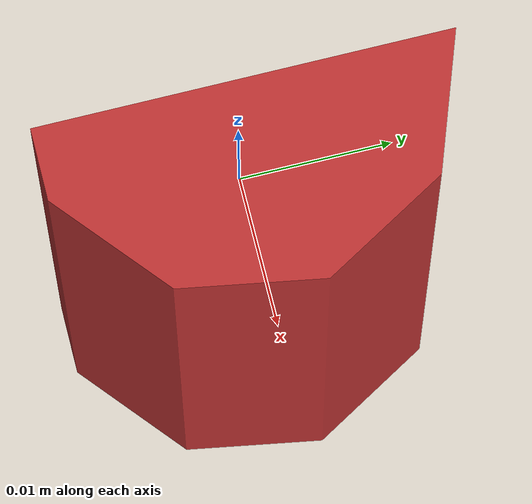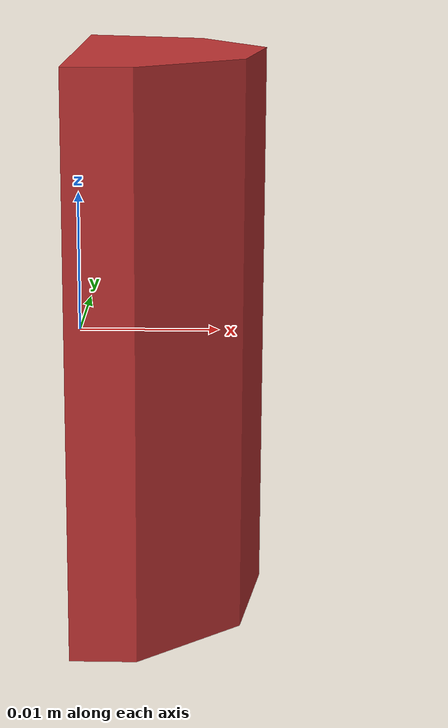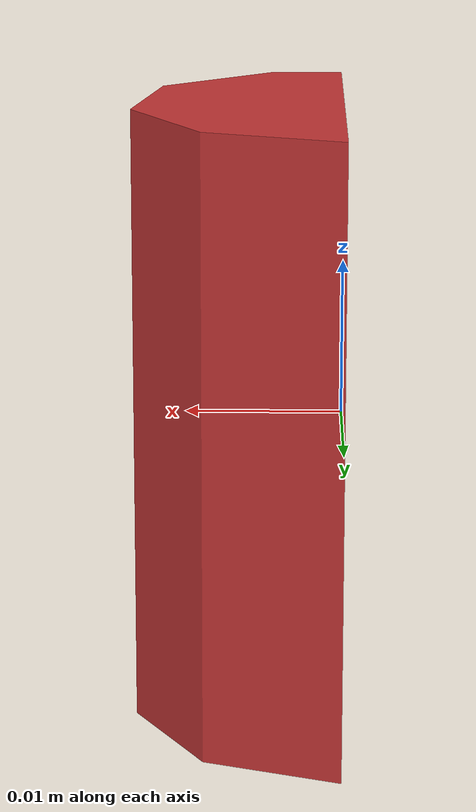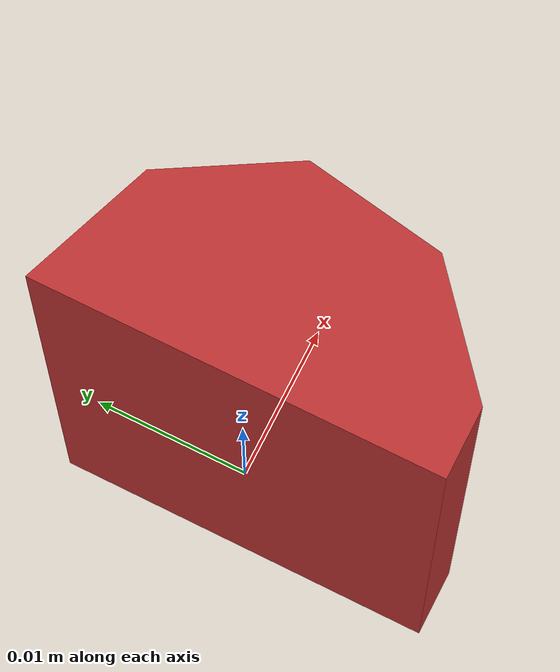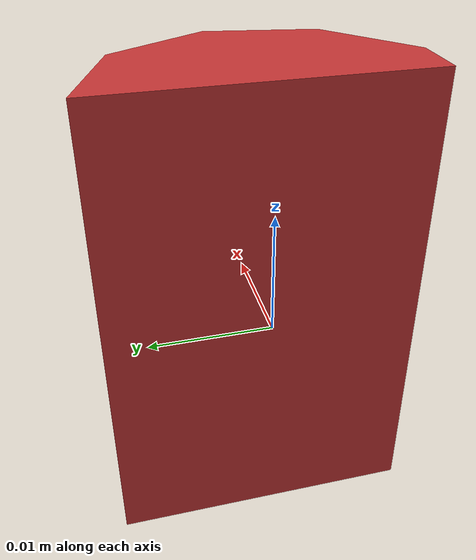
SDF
<?xml version="1.0" ?>
<sdf version='1.6'>
  <model name='cyl_6'>
    <link name='cyl_6'>
      <pose frame=''>0 0 0 0 0 0</pose>
      <inertial>
        <pose frame=''>0.005481 0.000000 0.000000 0. 0. 0.</pose>
        <mass>1.04772276209e-05</mass>
        <inertia>
          <ixx>1.8358519047e-09</ixx>
          <ixy>-7.46219706093e-13</ixy>
          <ixz>0.0</ixz>
          <iyy>1.52109532782e-09</iyy>
          <iyz>2.06795153138e-26</iyz>
          <izz>5.59414538312e-10</izz>
        </inertia>
      </inertial>
      <visual>
        <pose frame=''>0 0 0 0 0 0</pose>
        <geometry>
          <mesh>
            <scale>1 1 1</scale>
            <uri>models/half_carrot_models/meshes/cyl_6.obj</uri>
          </mesh>
        </geometry>
        <material>
          <ambient>0.75 0.2 0.2 1.0</ambient>
          <diffuse>0.75 0.2 0.2 1.0</diffuse>
          <specular>0.01 0.01 0.01 1</specular>
          <emissive>0 0 0 1</emissive>
          <shader type='vertex'>
            <normal_map>__default__</normal_map>
          </shader>
        </material>
      </visual>
      <collision>
        <pose frame=''>0 0 0 0 0 0</pose>
        <geometry>
          <mesh>
            <scale>1 1 1</scale>
            <uri>models/half_carrot_models/meshes/cyl_6.obj</uri>
          </mesh>
        </geometry>
      </collision>
      <gravity>1</gravity>
      <self_collide>0</self_collide>
    </link>
  </model>
</sdf>
